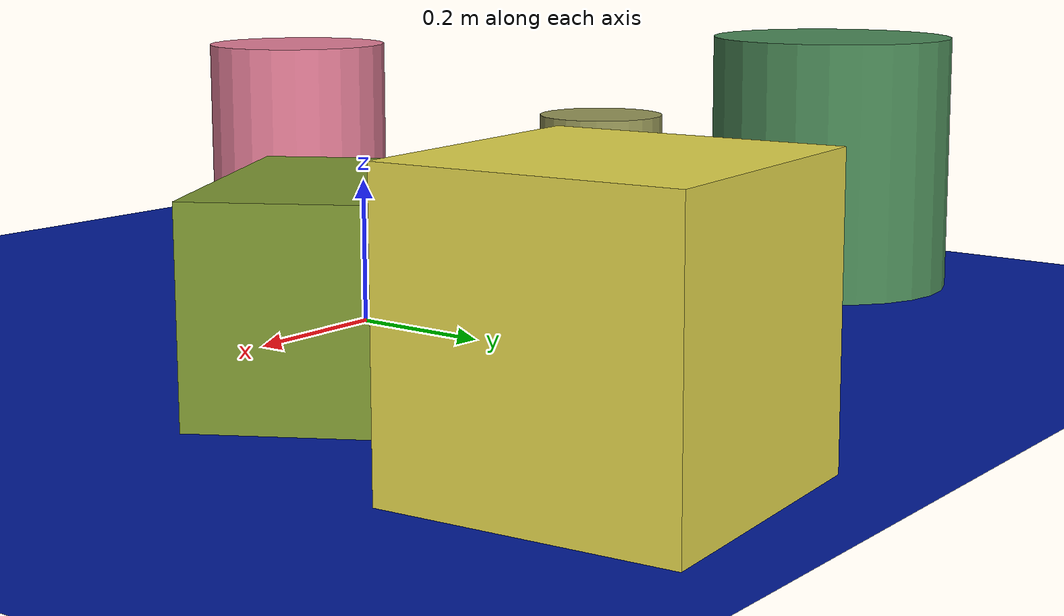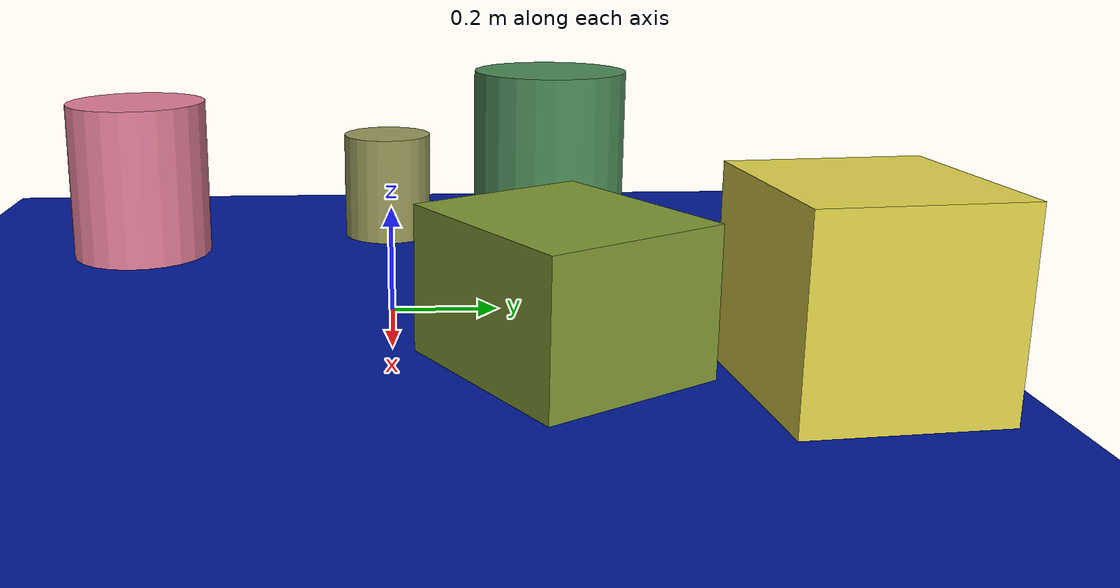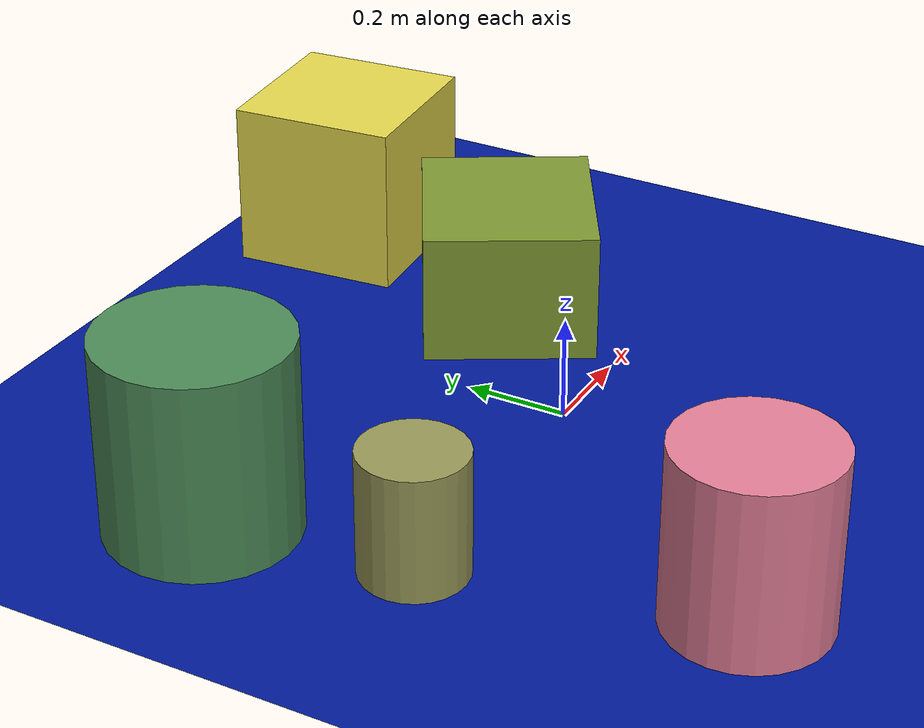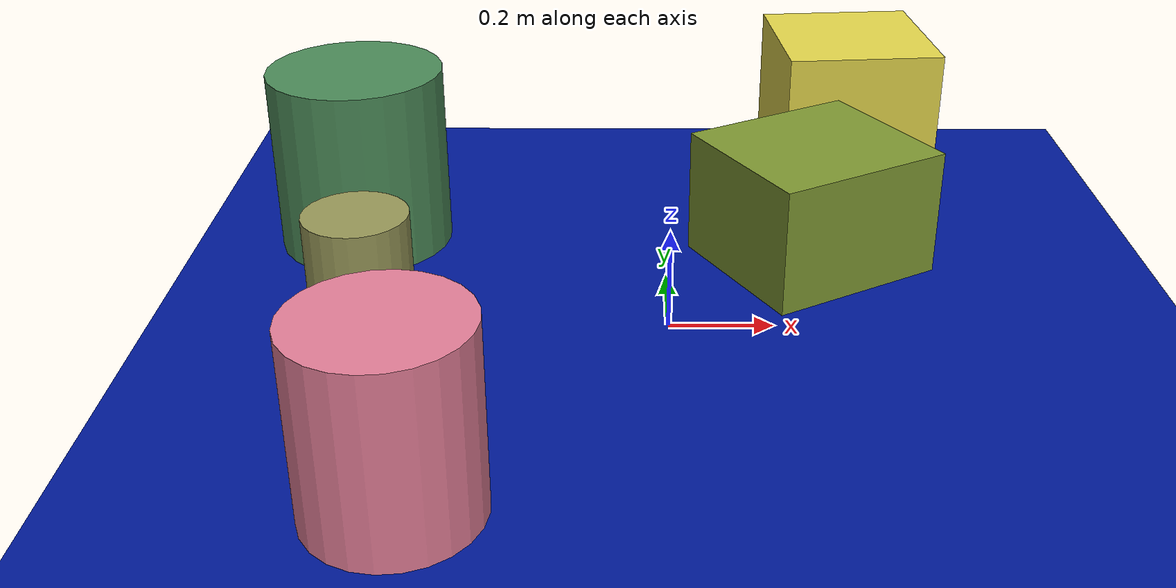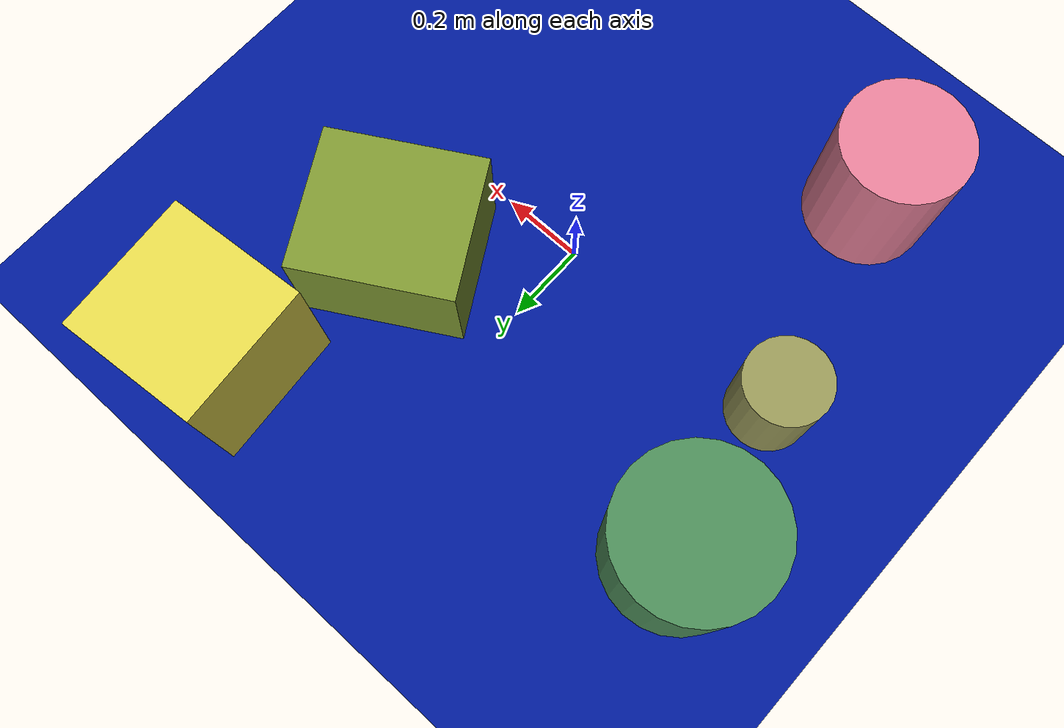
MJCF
<mujoco>
   <asset>
<texture type="skybox" builtin="gradient" rgb1="0.8 0.9 0.9" rgb2="0.6 0.7 0.9" width="256" height="256"/>
<texture name="checker_0" builtin="checker" rgb1="0.1 0.2 0.2" rgb2="0.9 1.0 0.2" width="200" height="200"/>
<texture name="checker_1" builtin="checker" rgb1="0.9 0.7 0.0" rgb2="0.9 1.0 0.6" width="200" height="200"/>
<texture name="checker_2" builtin="checker" rgb1="0.8 0.8 0.7" rgb2="1.0 0.2 0.5" width="200" height="200"/>
<texture name="gradient_3" builtin="gradient" rgb1="0.6 0.8 0.5" rgb2="0.6 0.4 0.2" width="200" height="200"/>
<texture name="gradient_4" builtin="gradient" rgb1="0.2 0.8 0.7" rgb2="0.4 0.3 0.0" width="200" height="200"/><material name="checker_0_mat" reflectance="0" texrepeat="6 6" texture="checker_0" texuniform="false" />
<material name="checker_1_mat" reflectance="0" texrepeat="10 10" texture="checker_1" texuniform="false" />
<material name="checker_2_mat" reflectance="0" texrepeat="4 4" texture="checker_2" texuniform="false" />
<material name="gradient_3_mat" reflectance="0" texture="gradient_3" texuniform="true"/>
<material name="gradient_4_mat" reflectance="0" texture="gradient_4" texuniform="true"/>
   </asset>

   <worldbody>
      <light diffuse=".9 .9 .9" pos="0 0 3" dir="0 0 -1"/>
     <geom type="plane" size="1 1 0.1" rgba="0.0 0.1 0.6 1"/>
<geom type="box" pos="0.3 0.28 0.13" size="0.19 0.17 0.13" material="checker_0_mat" euler="0 0 30" />
<geom type="box" pos="0.43 0.73 0.17" size="0.17 0.17 0.17" material="checker_1_mat" euler="0 0 5" />
<geom type="cylinder" pos="-0.44 -0.56 0.17" size="0.15 0.17 0.17" material="checker_2_mat" euler="0 0 28" />
<geom type="cylinder" pos="-0.58 -0.01 0.12" size="0.1 0.12 0.12" material="gradient_3_mat" euler="0 0 77" />
<geom type="cylinder" pos="-0.64 0.38 0.19" size="0.18 0.19 0.19" material="gradient_4_mat" euler="0 0 43" /><camera euler="60 0 180" fovy="60" name="camera1" pos="-0.2 -1.5 1"></camera>   </worldbody>
</mujoco>
